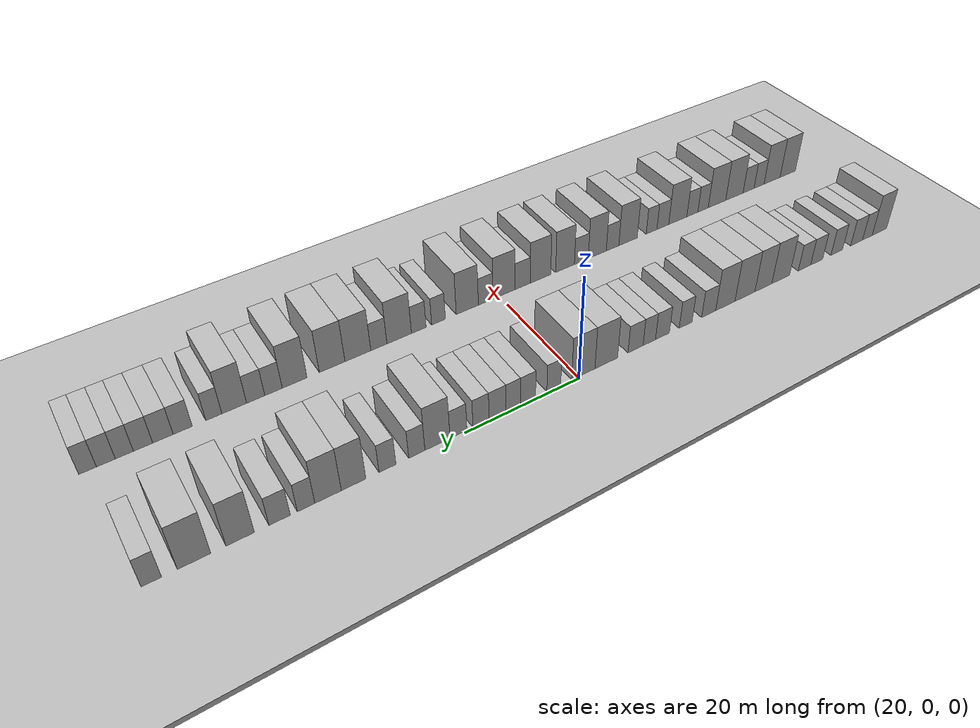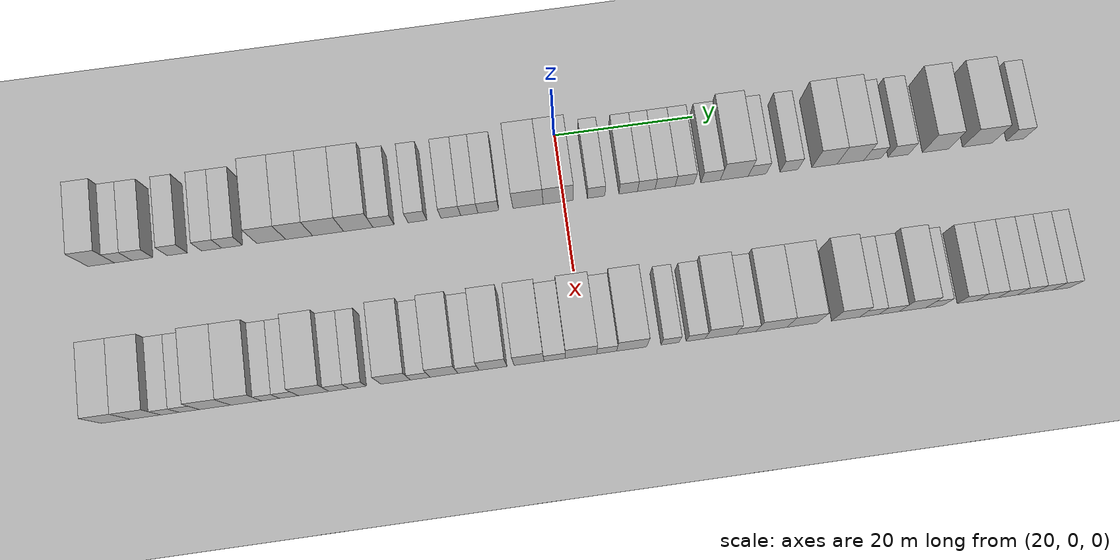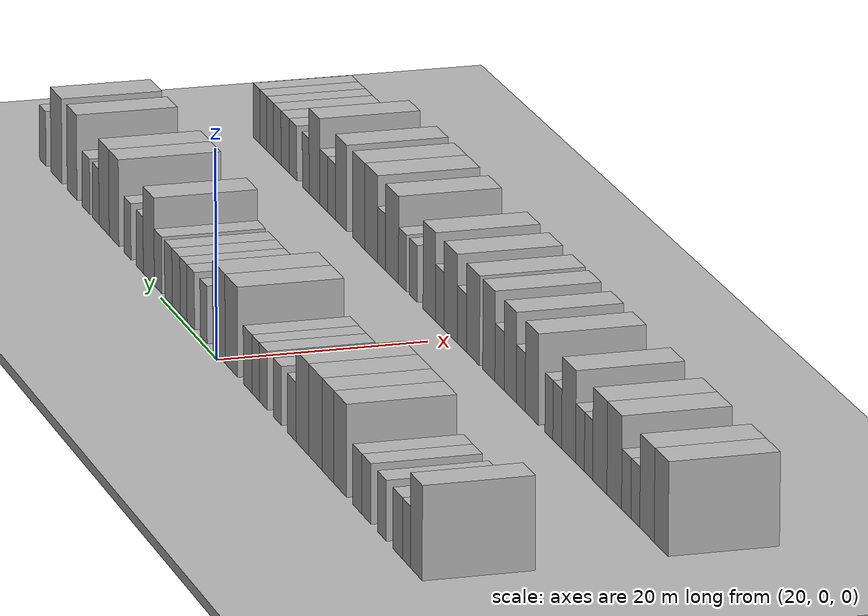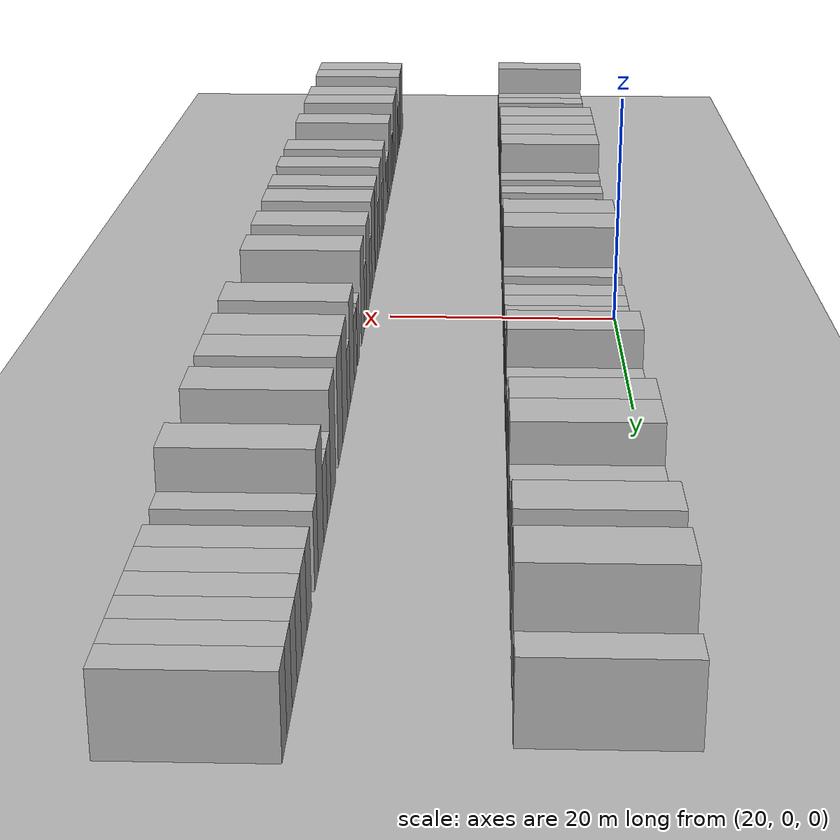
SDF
<sdf version="1.6">
 <world name="default">
  <include><name>ground_plane_1</name><uri>model://HANNAS_ground_plane</uri></include>
  <include>
   <name>ground_plane_2</name>
   <uri>model://HANNAS_ground_plane</uri>
   <pose>100 0 0  0 0 0</pose>
  </include>
  <model name="building_38">
   <static>1</static>
   <pose>25.0000 -65.1776 0 0.000000 0.000000 0.000000</pose>
   <link name="link">
    <pose>0 0 4.50 0 0 0</pose>
    <collision name="collision"><geometry><box><size>10.0000 3.6598 9.0000</size></box></geometry></collision>
    <visual name="visual">
     <cast_shadows>0</cast_shadows>
     <geometry><box><size>10.0000 3.6598 9.0000</size></box></geometry>
     <material>
      <script>
       <uri>model://HANNAS_wall/materials/scripts</uri>
       <uri>model://HANNAS_wall/materials/textures</uri>
       <name>vrc/HANNAS_wall</name>
      </script>
     </material>
    </visual>
   </link>
  </model>
  <model name="building_39">
   <static>1</static>
   <pose>25.0000 -62.1291 0 0.000000 0.000000 0.000000</pose>
   <link name="link">
    <pose>0 0 3.00 0 0 0</pose>
    <collision name="collision"><geometry><box><size>10.0000 2.4372 6.0000</size></box></geometry></collision>
    <visual name="visual">
     <cast_shadows>0</cast_shadows>
     <geometry><box><size>10.0000 2.4372 6.0000</size></box></geometry>
     <material>
      <script>
       <uri>model://HANNAS_wall/materials/scripts</uri>
       <uri>model://HANNAS_wall/materials/textures</uri>
       <name>vrc/HANNAS_wall</name>
      </script>
     </material>
    </visual>
   </link>
  </model>
  <model name="building_40">
   <static>1</static>
   <pose>25.0000 -59.4379 0 0.000000 0.000000 0.000000</pose>
   <link name="link">
    <pose>0 0 3.00 0 0 0</pose>
    <collision name="collision"><geometry><box><size>10.0000 2.9452 6.0000</size></box></geometry></collision>
    <visual name="visual">
     <cast_shadows>0</cast_shadows>
     <geometry><box><size>10.0000 2.9452 6.0000</size></box></geometry>
     <material>
      <script>
       <uri>model://HANNAS_wall/materials/scripts</uri>
       <uri>model://HANNAS_wall/materials/textures</uri>
       <name>vrc/HANNAS_wall</name>
      </script>
     </material>
    </visual>
   </link>
  </model>
  <model name="building_41">
   <static>1</static>
   <pose>25.0000 -54.5569 0 0.000000 0.000000 0.000000</pose>
   <link name="link">
    <pose>0 0 3.00 0 0 0</pose>
    <collision name="collision"><geometry><box><size>10.0000 2.8167 6.0000</size></box></geometry></collision>
    <visual name="visual">
     <cast_shadows>0</cast_shadows>
     <geometry><box><size>10.0000 2.8167 6.0000</size></box></geometry>
     <material>
      <script>
       <uri>model://HANNAS_wall/materials/scripts</uri>
       <uri>model://HANNAS_wall/materials/textures</uri>
       <name>vrc/HANNAS_wall</name>
      </script>
     </material>
    </visual>
   </link>
  </model>
  <model name="building_42">
   <static>1</static>
   <pose>25.0000 -49.7242 0 0.000000 0.000000 0.000000</pose>
   <link name="link">
    <pose>0 0 3.00 0 0 0</pose>
    <collision name="collision"><geometry><box><size>10.0000 2.8488 6.0000</size></box></geometry></collision>
    <visual name="visual">
     <cast_shadows>0</cast_shadows>
     <geometry><box><size>10.0000 2.8488 6.0000</size></box></geometry>
     <material>
      <script>
       <uri>model://HANNAS_wall/materials/scripts</uri>
       <uri>model://HANNAS_wall/materials/textures</uri>
       <name>vrc/HANNAS_wall</name>
      </script>
     </material>
    </visual>
   </link>
  </model>
  <model name="building_43">
   <static>1</static>
   <pose>25.0000 -46.8481 0 0.000000 0.000000 0.000000</pose>
   <link name="link">
    <pose>0 0 3.00 0 0 0</pose>
    <collision name="collision"><geometry><box><size>10.0000 2.9032 6.0000</size></box></geometry></collision>
    <visual name="visual">
     <cast_shadows>0</cast_shadows>
     <geometry><box><size>10.0000 2.9032 6.0000</size></box></geometry>
     <material>
      <script>
       <uri>model://HANNAS_wall/materials/scripts</uri>
       <uri>model://HANNAS_wall/materials/textures</uri>
       <name>vrc/HANNAS_wall</name>
      </script>
     </material>
    </visual>
   </link>
  </model>
  <model name="building_44">
   <static>1</static>
   <pose>25.0000 -41.3702 0 0.000000 0.000000 0.000000</pose>
   <link name="link">
    <pose>0 0 4.50 0 0 0</pose>
    <collision name="collision"><geometry><box><size>10.0000 4.0526 9.0000</size></box></geometry></collision>
    <visual name="visual">
     <cast_shadows>0</cast_shadows>
     <geometry><box><size>10.0000 4.0526 9.0000</size></box></geometry>
     <material>
      <script>
       <uri>model://HANNAS_wall/materials/scripts</uri>
       <uri>model://HANNAS_wall/materials/textures</uri>
       <name>vrc/HANNAS_wall</name>
      </script>
     </material>
    </visual>
   </link>
  </model>
  <model name="building_45">
   <static>1</static>
   <pose>25.0000 -37.4439 0 0.000000 0.000000 0.000000</pose>
   <link name="link">
    <pose>0 0 4.50 0 0 0</pose>
    <collision name="collision"><geometry><box><size>10.0000 3.8000 9.0000</size></box></geometry></collision>
    <visual name="visual">
     <cast_shadows>0</cast_shadows>
     <geometry><box><size>10.0000 3.8000 9.0000</size></box></geometry>
     <material>
      <script>
       <uri>model://HANNAS_wall/materials/scripts</uri>
       <uri>model://HANNAS_wall/materials/textures</uri>
       <name>vrc/HANNAS_wall</name>
      </script>
     </material>
    </visual>
   </link>
  </model>
  <model name="building_46">
   <static>1</static>
   <pose>25.0000 -33.3550 0 0.000000 0.000000 0.000000</pose>
   <link name="link">
    <pose>0 0 4.50 0 0 0</pose>
    <collision name="collision"><geometry><box><size>10.0000 4.3778 9.0000</size></box></geometry></collision>
    <visual name="visual">
     <cast_shadows>0</cast_shadows>
     <geometry><box><size>10.0000 4.3778 9.0000</size></box></geometry>
     <material>
      <script>
       <uri>model://HANNAS_wall/materials/scripts</uri>
       <uri>model://HANNAS_wall/materials/textures</uri>
       <name>vrc/HANNAS_wall</name>
      </script>
     </material>
    </visual>
   </link>
  </model>
  <model name="building_47">
   <static>1</static>
   <pose>25.0000 -29.0945 0 0.000000 0.000000 0.000000</pose>
   <link name="link">
    <pose>0 0 4.50 0 0 0</pose>
    <collision name="collision"><geometry><box><size>10.0000 4.1430 9.0000</size></box></geometry></collision>
    <visual name="visual">
     <cast_shadows>0</cast_shadows>
     <geometry><box><size>10.0000 4.1430 9.0000</size></box></geometry>
     <material>
      <script>
       <uri>model://HANNAS_wall/materials/scripts</uri>
       <uri>model://HANNAS_wall/materials/textures</uri>
       <name>vrc/HANNAS_wall</name>
      </script>
     </material>
    </visual>
   </link>
  </model>
  <model name="building_48">
   <static>1</static>
   <pose>25.0000 -25.5393 0 0.000000 0.000000 0.000000</pose>
   <link name="link">
    <pose>0 0 3.00 0 0 0</pose>
    <collision name="collision"><geometry><box><size>10.0000 2.9674 6.0000</size></box></geometry></collision>
    <visual name="visual">
     <cast_shadows>0</cast_shadows>
     <geometry><box><size>10.0000 2.9674 6.0000</size></box></geometry>
     <material>
      <script>
       <uri>model://HANNAS_wall/materials/scripts</uri>
       <uri>model://HANNAS_wall/materials/textures</uri>
       <name>vrc/HANNAS_wall</name>
      </script>
     </material>
    </visual>
   </link>
  </model>
  <model name="building_49">
   <static>1</static>
   <pose>25.0000 -20.7323 0 0.000000 0.000000 0.000000</pose>
   <link name="link">
    <pose>0 0 3.00 0 0 0</pose>
    <collision name="collision"><geometry><box><size>10.0000 2.6467 6.0000</size></box></geometry></collision>
    <visual name="visual">
     <cast_shadows>0</cast_shadows>
     <geometry><box><size>10.0000 2.6467 6.0000</size></box></geometry>
     <material>
      <script>
       <uri>model://HANNAS_wall/materials/scripts</uri>
       <uri>model://HANNAS_wall/materials/textures</uri>
       <name>vrc/HANNAS_wall</name>
      </script>
     </material>
    </visual>
   </link>
  </model>
  <model name="building_50">
   <static>1</static>
   <pose>25.0000 -16.0155 0 0.000000 0.000000 0.000000</pose>
   <link name="link">
    <pose>0 0 3.00 0 0 0</pose>
    <collision name="collision"><geometry><box><size>10.0000 2.7867 6.0000</size></box></geometry></collision>
    <visual name="visual">
     <cast_shadows>0</cast_shadows>
     <geometry><box><size>10.0000 2.7867 6.0000</size></box></geometry>
     <material>
      <script>
       <uri>model://HANNAS_wall/materials/scripts</uri>
       <uri>model://HANNAS_wall/materials/textures</uri>
       <name>vrc/HANNAS_wall</name>
      </script>
     </material>
    </visual>
   </link>
  </model>
  <model name="building_51">
   <static>1</static>
   <pose>25.0000 -13.3936 0 0.000000 0.000000 0.000000</pose>
   <link name="link">
    <pose>0 0 3.00 0 0 0</pose>
    <collision name="collision"><geometry><box><size>10.0000 2.4571 6.0000</size></box></geometry></collision>
    <visual name="visual">
     <cast_shadows>0</cast_shadows>
     <geometry><box><size>10.0000 2.4571 6.0000</size></box></geometry>
     <material>
      <script>
       <uri>model://HANNAS_wall/materials/scripts</uri>
       <uri>model://HANNAS_wall/materials/textures</uri>
       <name>vrc/HANNAS_wall</name>
      </script>
     </material>
    </visual>
   </link>
  </model>
  <model name="building_52">
   <static>1</static>
   <pose>25.0000 -10.6861 0 0.000000 0.000000 0.000000</pose>
   <link name="link">
    <pose>0 0 3.00 0 0 0</pose>
    <collision name="collision"><geometry><box><size>10.0000 2.9580 6.0000</size></box></geometry></collision>
    <visual name="visual">
     <cast_shadows>0</cast_shadows>
     <geometry><box><size>10.0000 2.9580 6.0000</size></box></geometry>
     <material>
      <script>
       <uri>model://HANNAS_wall/materials/scripts</uri>
       <uri>model://HANNAS_wall/materials/textures</uri>
       <name>vrc/HANNAS_wall</name>
      </script>
     </material>
    </visual>
   </link>
  </model>
  <model name="building_53">
   <static>1</static>
   <pose>25.0000 -5.0630 0 0.000000 0.000000 0.000000</pose>
   <link name="link">
    <pose>0 0 4.50 0 0 0</pose>
    <collision name="collision"><geometry><box><size>10.0000 4.2881 9.0000</size></box></geometry></collision>
    <visual name="visual">
     <cast_shadows>0</cast_shadows>
     <geometry><box><size>10.0000 4.2881 9.0000</size></box></geometry>
     <material>
      <script>
       <uri>model://HANNAS_wall/materials/scripts</uri>
       <uri>model://HANNAS_wall/materials/textures</uri>
       <name>vrc/HANNAS_wall</name>
      </script>
     </material>
    </visual>
   </link>
  </model>
  <model name="building_54">
   <static>1</static>
   <pose>25.0000 -0.7715 0 0.000000 0.000000 0.000000</pose>
   <link name="link">
    <pose>0 0 4.50 0 0 0</pose>
    <collision name="collision"><geometry><box><size>10.0000 4.2949 9.0000</size></box></geometry></collision>
    <visual name="visual">
     <cast_shadows>0</cast_shadows>
     <geometry><box><size>10.0000 4.2949 9.0000</size></box></geometry>
     <material>
      <script>
       <uri>model://HANNAS_wall/materials/scripts</uri>
       <uri>model://HANNAS_wall/materials/textures</uri>
       <name>vrc/HANNAS_wall</name>
      </script>
     </material>
    </visual>
   </link>
  </model>
  <model name="building_55">
   <static>1</static>
   <pose>25.0000 4.6251 0 0.000000 0.000000 0.000000</pose>
   <link name="link">
    <pose>0 0 3.00 0 0 0</pose>
    <collision name="collision"><geometry><box><size>10.0000 2.4984 6.0000</size></box></geometry></collision>
    <visual name="visual">
     <cast_shadows>0</cast_shadows>
     <geometry><box><size>10.0000 2.4984 6.0000</size></box></geometry>
     <material>
      <script>
       <uri>model://HANNAS_wall/materials/scripts</uri>
       <uri>model://HANNAS_wall/materials/textures</uri>
       <name>vrc/HANNAS_wall</name>
      </script>
     </material>
    </visual>
   </link>
  </model>
  <model name="building_56">
   <static>1</static>
   <pose>25.0000 9.1985 0 0.000000 0.000000 0.000000</pose>
   <link name="link">
    <pose>0 0 3.00 0 0 0</pose>
    <collision name="collision"><geometry><box><size>10.0000 2.6484 6.0000</size></box></geometry></collision>
    <visual name="visual">
     <cast_shadows>0</cast_shadows>
     <geometry><box><size>10.0000 2.6484 6.0000</size></box></geometry>
     <material>
      <script>
       <uri>model://HANNAS_wall/materials/scripts</uri>
       <uri>model://HANNAS_wall/materials/textures</uri>
       <name>vrc/HANNAS_wall</name>
      </script>
     </material>
    </visual>
   </link>
  </model>
  <model name="building_57">
   <static>1</static>
   <pose>25.0000 11.7842 0 0.000000 0.000000 0.000000</pose>
   <link name="link">
    <pose>0 0 3.00 0 0 0</pose>
    <collision name="collision"><geometry><box><size>10.0000 2.5229 6.0000</size></box></geometry></collision>
    <visual name="visual">
     <cast_shadows>0</cast_shadows>
     <geometry><box><size>10.0000 2.5229 6.0000</size></box></geometry>
     <material>
      <script>
       <uri>model://HANNAS_wall/materials/scripts</uri>
       <uri>model://HANNAS_wall/materials/textures</uri>
       <name>vrc/HANNAS_wall</name>
      </script>
     </material>
    </visual>
   </link>
  </model>
  <model name="building_58">
   <static>1</static>
   <pose>25.0000 14.4727 0 0.000000 0.000000 0.000000</pose>
   <link name="link">
    <pose>0 0 3.00 0 0 0</pose>
    <collision name="collision"><geometry><box><size>10.0000 2.8541 6.0000</size></box></geometry></collision>
    <visual name="visual">
     <cast_shadows>0</cast_shadows>
     <geometry><box><size>10.0000 2.8541 6.0000</size></box></geometry>
     <material>
      <script>
       <uri>model://HANNAS_wall/materials/scripts</uri>
       <uri>model://HANNAS_wall/materials/textures</uri>
       <name>vrc/HANNAS_wall</name>
      </script>
     </material>
    </visual>
   </link>
  </model>
  <model name="building_59">
   <static>1</static>
   <pose>25.0000 17.2530 0 0.000000 0.000000 0.000000</pose>
   <link name="link">
    <pose>0 0 3.00 0 0 0</pose>
    <collision name="collision"><geometry><box><size>10.0000 2.7065 6.0000</size></box></geometry></collision>
    <visual name="visual">
     <cast_shadows>0</cast_shadows>
     <geometry><box><size>10.0000 2.7065 6.0000</size></box></geometry>
     <material>
      <script>
       <uri>model://HANNAS_wall/materials/scripts</uri>
       <uri>model://HANNAS_wall/materials/textures</uri>
       <name>vrc/HANNAS_wall</name>
      </script>
     </material>
    </visual>
   </link>
  </model>
  <model name="building_60">
   <static>1</static>
   <pose>25.0000 20.9910 0 0.000000 0.000000 0.000000</pose>
   <link name="link">
    <pose>0 0 3.00 0 0 0</pose>
    <collision name="collision"><geometry><box><size>10.0000 2.7695 6.0000</size></box></geometry></collision>
    <visual name="visual">
     <cast_shadows>0</cast_shadows>
     <geometry><box><size>10.0000 2.7695 6.0000</size></box></geometry>
     <material>
      <script>
       <uri>model://HANNAS_wall/materials/scripts</uri>
       <uri>model://HANNAS_wall/materials/textures</uri>
       <name>vrc/HANNAS_wall</name>
      </script>
     </material>
    </visual>
   </link>
  </model>
  <model name="building_61">
   <static>1</static>
   <pose>25.0000 24.3944 0 0.000000 0.000000 0.000000</pose>
   <link name="link">
    <pose>0 0 4.50 0 0 0</pose>
    <collision name="collision"><geometry><box><size>10.0000 4.0373 9.0000</size></box></geometry></collision>
    <visual name="visual">
     <cast_shadows>0</cast_shadows>
     <geometry><box><size>10.0000 4.0373 9.0000</size></box></geometry>
     <material>
      <script>
       <uri>model://HANNAS_wall/materials/scripts</uri>
       <uri>model://HANNAS_wall/materials/textures</uri>
       <name>vrc/HANNAS_wall</name>
      </script>
     </material>
    </visual>
   </link>
  </model>
  <model name="building_62">
   <static>1</static>
   <pose>25.0000 27.6877 0 0.000000 0.000000 0.000000</pose>
   <link name="link">
    <pose>0 0 3.00 0 0 0</pose>
    <collision name="collision"><geometry><box><size>10.0000 2.5493 6.0000</size></box></geometry></collision>
    <visual name="visual">
     <cast_shadows>0</cast_shadows>
     <geometry><box><size>10.0000 2.5493 6.0000</size></box></geometry>
     <material>
      <script>
       <uri>model://HANNAS_wall/materials/scripts</uri>
       <uri>model://HANNAS_wall/materials/textures</uri>
       <name>vrc/HANNAS_wall</name>
      </script>
     </material>
    </visual>
   </link>
  </model>
  <model name="building_63">
   <static>1</static>
   <pose>25.0000 32.2560 0 0.000000 0.000000 0.000000</pose>
   <link name="link">
    <pose>0 0 3.00 0 0 0</pose>
    <collision name="collision"><geometry><box><size>10.0000 2.5872 6.0000</size></box></geometry></collision>
    <visual name="visual">
     <cast_shadows>0</cast_shadows>
     <geometry><box><size>10.0000 2.5872 6.0000</size></box></geometry>
     <material>
      <script>
       <uri>model://HANNAS_wall/materials/scripts</uri>
       <uri>model://HANNAS_wall/materials/textures</uri>
       <name>vrc/HANNAS_wall</name>
      </script>
     </material>
    </visual>
   </link>
  </model>
  <model name="building_64">
   <static>1</static>
   <pose>25.0000 37.3747 0 0.000000 0.000000 0.000000</pose>
   <link name="link">
    <pose>0 0 4.50 0 0 0</pose>
    <collision name="collision"><geometry><box><size>10.0000 3.6503 9.0000</size></box></geometry></collision>
    <visual name="visual">
     <cast_shadows>0</cast_shadows>
     <geometry><box><size>10.0000 3.6503 9.0000</size></box></geometry>
     <material>
      <script>
       <uri>model://HANNAS_wall/materials/scripts</uri>
       <uri>model://HANNAS_wall/materials/textures</uri>
       <name>vrc/HANNAS_wall</name>
      </script>
     </material>
    </visual>
   </link>
  </model>
  <model name="building_65">
   <static>1</static>
   <pose>25.0000 41.1248 0 0.000000 0.000000 0.000000</pose>
   <link name="link">
    <pose>0 0 4.50 0 0 0</pose>
    <collision name="collision"><geometry><box><size>10.0000 3.8499 9.0000</size></box></geometry></collision>
    <visual name="visual">
     <cast_shadows>0</cast_shadows>
     <geometry><box><size>10.0000 3.8499 9.0000</size></box></geometry>
     <material>
      <script>
       <uri>model://HANNAS_wall/materials/scripts</uri>
       <uri>model://HANNAS_wall/materials/textures</uri>
       <name>vrc/HANNAS_wall</name>
      </script>
     </material>
    </visual>
   </link>
  </model>
  <model name="building_66">
   <static>1</static>
   <pose>25.0000 44.2967 0 0.000000 0.000000 0.000000</pose>
   <link name="link">
    <pose>0 0 3.00 0 0 0</pose>
    <collision name="collision"><geometry><box><size>10.0000 2.4941 6.0000</size></box></geometry></collision>
    <visual name="visual">
     <cast_shadows>0</cast_shadows>
     <geometry><box><size>10.0000 2.4941 6.0000</size></box></geometry>
     <material>
      <script>
       <uri>model://HANNAS_wall/materials/scripts</uri>
       <uri>model://HANNAS_wall/materials/textures</uri>
       <name>vrc/HANNAS_wall</name>
      </script>
     </material>
    </visual>
   </link>
  </model>
  <model name="building_67">
   <static>1</static>
   <pose>25.0000 48.0324 0 0.000000 0.000000 0.000000</pose>
   <link name="link">
    <pose>0 0 3.00 0 0 0</pose>
    <collision name="collision"><geometry><box><size>10.0000 2.9772 6.0000</size></box></geometry></collision>
    <visual name="visual">
     <cast_shadows>0</cast_shadows>
     <geometry><box><size>10.0000 2.9772 6.0000</size></box></geometry>
     <material>
      <script>
       <uri>model://HANNAS_wall/materials/scripts</uri>
       <uri>model://HANNAS_wall/materials/textures</uri>
       <name>vrc/HANNAS_wall</name>
      </script>
     </material>
    </visual>
   </link>
  </model>
  <model name="building_68">
   <static>1</static>
   <pose>25.0000 53.4341 0 0.000000 0.000000 0.000000</pose>
   <link name="link">
    <pose>0 0 4.50 0 0 0</pose>
    <collision name="collision"><geometry><box><size>10.0000 3.8263 9.0000</size></box></geometry></collision>
    <visual name="visual">
     <cast_shadows>0</cast_shadows>
     <geometry><box><size>10.0000 3.8263 9.0000</size></box></geometry>
     <material>
      <script>
       <uri>model://HANNAS_wall/materials/scripts</uri>
       <uri>model://HANNAS_wall/materials/textures</uri>
       <name>vrc/HANNAS_wall</name>
      </script>
     </material>
    </visual>
   </link>
  </model>
  <model name="building_69">
   <static>1</static>
   <pose>25.0000 59.5182 0 0.000000 0.000000 0.000000</pose>
   <link name="link">
    <pose>0 0 4.50 0 0 0</pose>
    <collision name="collision"><geometry><box><size>10.0000 4.3419 9.0000</size></box></geometry></collision>
    <visual name="visual">
     <cast_shadows>0</cast_shadows>
     <geometry><box><size>10.0000 4.3419 9.0000</size></box></geometry>
     <material>
      <script>
       <uri>model://HANNAS_wall/materials/scripts</uri>
       <uri>model://HANNAS_wall/materials/textures</uri>
       <name>vrc/HANNAS_wall</name>
      </script>
     </material>
    </visual>
   </link>
  </model>
  <model name="building_70">
   <static>1</static>
   <pose>25.0000 64.9756 0 0.000000 0.000000 0.000000</pose>
   <link name="link">
    <pose>0 0 3.00 0 0 0</pose>
    <collision name="collision"><geometry><box><size>10.0000 2.5729 6.0000</size></box></geometry></collision>
    <visual name="visual">
     <cast_shadows>0</cast_shadows>
     <geometry><box><size>10.0000 2.5729 6.0000</size></box></geometry>
     <material>
      <script>
       <uri>model://HANNAS_wall/materials/scripts</uri>
       <uri>model://HANNAS_wall/materials/textures</uri>
       <name>vrc/HANNAS_wall</name>
      </script>
     </material>
    </visual>
   </link>
  </model>
  <model name="building_144">
   <static>1</static>
   <pose>47.0000 -64.5363 0 0.000000 0.000000 0.000000</pose>
   <link name="link">
    <pose>0 0 4.50 0 0 0</pose>
    <collision name="collision"><geometry><box><size>10.0000 3.9739 9.0000</size></box></geometry></collision>
    <visual name="visual">
     <cast_shadows>0</cast_shadows>
     <geometry><box><size>10.0000 3.9739 9.0000</size></box></geometry>
     <material>
      <script>
       <uri>model://HANNAS_wall/materials/scripts</uri>
       <uri>model://HANNAS_wall/materials/textures</uri>
       <name>vrc/HANNAS_wall</name>
      </script>
     </material>
    </visual>
   </link>
  </model>
  <model name="building_145">
   <static>1</static>
   <pose>47.0000 -60.4862 0 0.000000 0.000000 0.000000</pose>
   <link name="link">
    <pose>0 0 4.50 0 0 0</pose>
    <collision name="collision"><geometry><box><size>10.0000 4.1264 9.0000</size></box></geometry></collision>
    <visual name="visual">
     <cast_shadows>0</cast_shadows>
     <geometry><box><size>10.0000 4.1264 9.0000</size></box></geometry>
     <material>
      <script>
       <uri>model://HANNAS_wall/materials/scripts</uri>
       <uri>model://HANNAS_wall/materials/textures</uri>
       <name>vrc/HANNAS_wall</name>
      </script>
     </material>
    </visual>
   </link>
  </model>
  <model name="building_146">
   <static>1</static>
   <pose>47.0000 -57.1614 0 0.000000 0.000000 0.000000</pose>
   <link name="link">
    <pose>0 0 3.00 0 0 0</pose>
    <collision name="collision"><geometry><box><size>10.0000 2.5232 6.0000</size></box></geometry></collision>
    <visual name="visual">
     <cast_shadows>0</cast_shadows>
     <geometry><box><size>10.0000 2.5232 6.0000</size></box></geometry>
     <material>
      <script>
       <uri>model://HANNAS_wall/materials/scripts</uri>
       <uri>model://HANNAS_wall/materials/textures</uri>
       <name>vrc/HANNAS_wall</name>
      </script>
     </material>
    </visual>
   </link>
  </model>
  <model name="building_147">
   <static>1</static>
   <pose>47.0000 -54.5293 0 0.000000 0.000000 0.000000</pose>
   <link name="link">
    <pose>0 0 3.00 0 0 0</pose>
    <collision name="collision"><geometry><box><size>10.0000 2.7410 6.0000</size></box></geometry></collision>
    <visual name="visual">
     <cast_shadows>0</cast_shadows>
     <geometry><box><size>10.0000 2.7410 6.0000</size></box></geometry>
     <material>
      <script>
       <uri>model://HANNAS_wall/materials/scripts</uri>
       <uri>model://HANNAS_wall/materials/textures</uri>
       <name>vrc/HANNAS_wall</name>
      </script>
     </material>
    </visual>
   </link>
  </model>
  <model name="building_148">
   <static>1</static>
   <pose>47.0000 -51.0214 0 0.000000 0.000000 0.000000</pose>
   <link name="link">
    <pose>0 0 4.50 0 0 0</pose>
    <collision name="collision"><geometry><box><size>10.0000 4.2747 9.0000</size></box></geometry></collision>
    <visual name="visual">
     <cast_shadows>0</cast_shadows>
     <geometry><box><size>10.0000 4.2747 9.0000</size></box></geometry>
     <material>
      <script>
       <uri>model://HANNAS_wall/materials/scripts</uri>
       <uri>model://HANNAS_wall/materials/textures</uri>
       <name>vrc/HANNAS_wall</name>
      </script>
     </material>
    </visual>
   </link>
  </model>
  <model name="building_149">
   <static>1</static>
   <pose>47.0000 -46.7725 0 0.000000 0.000000 0.000000</pose>
   <link name="link">
    <pose>0 0 4.50 0 0 0</pose>
    <collision name="collision"><geometry><box><size>10.0000 4.2233 9.0000</size></box></geometry></collision>
    <visual name="visual">
     <cast_shadows>0</cast_shadows>
     <geometry><box><size>10.0000 4.2233 9.0000</size></box></geometry>
     <material>
      <script>
       <uri>model://HANNAS_wall/materials/scripts</uri>
       <uri>model://HANNAS_wall/materials/textures</uri>
       <name>vrc/HANNAS_wall</name>
      </script>
     </material>
    </visual>
   </link>
  </model>
  <model name="building_150">
   <static>1</static>
   <pose>47.0000 -43.4318 0 0.000000 0.000000 0.000000</pose>
   <link name="link">
    <pose>0 0 3.00 0 0 0</pose>
    <collision name="collision"><geometry><box><size>10.0000 2.4582 6.0000</size></box></geometry></collision>
    <visual name="visual">
     <cast_shadows>0</cast_shadows>
     <geometry><box><size>10.0000 2.4582 6.0000</size></box></geometry>
     <material>
      <script>
       <uri>model://HANNAS_wall/materials/scripts</uri>
       <uri>model://HANNAS_wall/materials/textures</uri>
       <name>vrc/HANNAS_wall</name>
      </script>
     </material>
    </visual>
   </link>
  </model>
  <model name="building_151">
   <static>1</static>
   <pose>47.0000 -40.9011 0 0.000000 0.000000 0.000000</pose>
   <link name="link">
    <pose>0 0 3.00 0 0 0</pose>
    <collision name="collision"><geometry><box><size>10.0000 2.6032 6.0000</size></box></geometry></collision>
    <visual name="visual">
     <cast_shadows>0</cast_shadows>
     <geometry><box><size>10.0000 2.6032 6.0000</size></box></geometry>
     <material>
      <script>
       <uri>model://HANNAS_wall/materials/scripts</uri>
       <uri>model://HANNAS_wall/materials/textures</uri>
       <name>vrc/HANNAS_wall</name>
      </script>
     </material>
    </visual>
   </link>
  </model>
  <model name="building_152">
   <static>1</static>
   <pose>47.0000 -37.5008 0 0.000000 0.000000 0.000000</pose>
   <link name="link">
    <pose>0 0 4.50 0 0 0</pose>
    <collision name="collision"><geometry><box><size>10.0000 4.1974 9.0000</size></box></geometry></collision>
    <visual name="visual">
     <cast_shadows>0</cast_shadows>
     <geometry><box><size>10.0000 4.1974 9.0000</size></box></geometry>
     <material>
      <script>
       <uri>model://HANNAS_wall/materials/scripts</uri>
       <uri>model://HANNAS_wall/materials/textures</uri>
       <name>vrc/HANNAS_wall</name>
      </script>
     </material>
    </visual>
   </link>
  </model>
  <model name="building_153">
   <static>1</static>
   <pose>47.0000 -34.0541 0 0.000000 0.000000 0.000000</pose>
   <link name="link">
    <pose>0 0 3.00 0 0 0</pose>
    <collision name="collision"><geometry><box><size>10.0000 2.6961 6.0000</size></box></geometry></collision>
    <visual name="visual">
     <cast_shadows>0</cast_shadows>
     <geometry><box><size>10.0000 2.6961 6.0000</size></box></geometry>
     <material>
      <script>
       <uri>model://HANNAS_wall/materials/scripts</uri>
       <uri>model://HANNAS_wall/materials/textures</uri>
       <name>vrc/HANNAS_wall</name>
      </script>
     </material>
    </visual>
   </link>
  </model>
  <model name="building_154">
   <static>1</static>
   <pose>47.0000 -31.4994 0 0.000000 0.000000 0.000000</pose>
   <link name="link">
    <pose>0 0 3.00 0 0 0</pose>
    <collision name="collision"><geometry><box><size>10.0000 2.4133 6.0000</size></box></geometry></collision>
    <visual name="visual">
     <cast_shadows>0</cast_shadows>
     <geometry><box><size>10.0000 2.4133 6.0000</size></box></geometry>
     <material>
      <script>
       <uri>model://HANNAS_wall/materials/scripts</uri>
       <uri>model://HANNAS_wall/materials/textures</uri>
       <name>vrc/HANNAS_wall</name>
      </script>
     </material>
    </visual>
   </link>
  </model>
  <model name="building_155">
   <static>1</static>
   <pose>47.0000 -26.2632 0 0.000000 0.000000 0.000000</pose>
   <link name="link">
    <pose>0 0 4.50 0 0 0</pose>
    <collision name="collision"><geometry><box><size>10.0000 4.0592 9.0000</size></box></geometry></collision>
    <visual name="visual">
     <cast_shadows>0</cast_shadows>
     <geometry><box><size>10.0000 4.0592 9.0000</size></box></geometry>
     <material>
      <script>
       <uri>model://HANNAS_wall/materials/scripts</uri>
       <uri>model://HANNAS_wall/materials/textures</uri>
       <name>vrc/HANNAS_wall</name>
      </script>
     </material>
    </visual>
   </link>
  </model>
  <model name="building_156">
   <static>1</static>
   <pose>47.0000 -22.8777 0 0.000000 0.000000 0.000000</pose>
   <link name="link">
    <pose>0 0 3.00 0 0 0</pose>
    <collision name="collision"><geometry><box><size>10.0000 2.7119 6.0000</size></box></geometry></collision>
    <visual name="visual">
     <cast_shadows>0</cast_shadows>
     <geometry><box><size>10.0000 2.7119 6.0000</size></box></geometry>
     <material>
      <script>
       <uri>model://HANNAS_wall/materials/scripts</uri>
       <uri>model://HANNAS_wall/materials/textures</uri>
       <name>vrc/HANNAS_wall</name>
      </script>
     </material>
    </visual>
   </link>
  </model>
  <model name="building_157">
   <static>1</static>
   <pose>47.0000 -19.6024 0 0.000000 0.000000 0.000000</pose>
   <link name="link">
    <pose>0 0 4.50 0 0 0</pose>
    <collision name="collision"><geometry><box><size>10.0000 3.8385 9.0000</size></box></geometry></collision>
    <visual name="visual">
     <cast_shadows>0</cast_shadows>
     <geometry><box><size>10.0000 3.8385 9.0000</size></box></geometry>
     <material>
      <script>
       <uri>model://HANNAS_wall/materials/scripts</uri>
       <uri>model://HANNAS_wall/materials/textures</uri>
       <name>vrc/HANNAS_wall</name>
      </script>
     </material>
    </visual>
   </link>
  </model>
  <model name="building_158">
   <static>1</static>
   <pose>47.0000 -16.2246 0 0.000000 0.000000 0.000000</pose>
   <link name="link">
    <pose>0 0 3.00 0 0 0</pose>
    <collision name="collision"><geometry><box><size>10.0000 2.9171 6.0000</size></box></geometry></collision>
    <visual name="visual">
     <cast_shadows>0</cast_shadows>
     <geometry><box><size>10.0000 2.9171 6.0000</size></box></geometry>
     <material>
      <script>
       <uri>model://HANNAS_wall/materials/scripts</uri>
       <uri>model://HANNAS_wall/materials/textures</uri>
       <name>vrc/HANNAS_wall</name>
      </script>
     </material>
    </visual>
   </link>
  </model>
  <model name="building_159">
   <static>1</static>
   <pose>47.0000 -12.8335 0 0.000000 0.000000 0.000000</pose>
   <link name="link">
    <pose>0 0 4.50 0 0 0</pose>
    <collision name="collision"><geometry><box><size>10.0000 3.8650 9.0000</size></box></geometry></collision>
    <visual name="visual">
     <cast_shadows>0</cast_shadows>
     <geometry><box><size>10.0000 3.8650 9.0000</size></box></geometry>
     <material>
      <script>
       <uri>model://HANNAS_wall/materials/scripts</uri>
       <uri>model://HANNAS_wall/materials/textures</uri>
       <name>vrc/HANNAS_wall</name>
      </script>
     </material>
    </visual>
   </link>
  </model>
  <model name="building_160">
   <static>1</static>
   <pose>47.0000 -7.8353 0 0.000000 0.000000 0.000000</pose>
   <link name="link">
    <pose>0 0 4.50 0 0 0</pose>
    <collision name="collision"><geometry><box><size>10.0000 4.1315 9.0000</size></box></geometry></collision>
    <visual name="visual">
     <cast_shadows>0</cast_shadows>
     <geometry><box><size>10.0000 4.1315 9.0000</size></box></geometry>
     <material>
      <script>
       <uri>model://HANNAS_wall/materials/scripts</uri>
       <uri>model://HANNAS_wall/materials/textures</uri>
       <name>vrc/HANNAS_wall</name>
      </script>
     </material>
    </visual>
   </link>
  </model>
  <model name="building_161">
   <static>1</static>
   <pose>47.0000 -4.2842 0 0.000000 0.000000 0.000000</pose>
   <link name="link">
    <pose>0 0 3.00 0 0 0</pose>
    <collision name="collision"><geometry><box><size>10.0000 2.9708 6.0000</size></box></geometry></collision>
    <visual name="visual">
     <cast_shadows>0</cast_shadows>
     <geometry><box><size>10.0000 2.9708 6.0000</size></box></geometry>
     <material>
      <script>
       <uri>model://HANNAS_wall/materials/scripts</uri>
       <uri>model://HANNAS_wall/materials/textures</uri>
       <name>vrc/HANNAS_wall</name>
      </script>
     </material>
    </visual>
   </link>
  </model>
  <model name="building_162">
   <static>1</static>
   <pose>47.0000 -0.6402 0 0.000000 0.000000 0.000000</pose>
   <link name="link">
    <pose>0 0 4.50 0 0 0</pose>
    <collision name="collision"><geometry><box><size>10.0000 4.3172 9.0000</size></box></geometry></collision>
    <visual name="visual">
     <cast_shadows>0</cast_shadows>
     <geometry><box><size>10.0000 4.3172 9.0000</size></box></geometry>
     <material>
      <script>
       <uri>model://HANNAS_wall/materials/scripts</uri>
       <uri>model://HANNAS_wall/materials/textures</uri>
       <name>vrc/HANNAS_wall</name>
      </script>
     </material>
    </visual>
   </link>
  </model>
  <model name="building_163">
   <static>1</static>
   <pose>47.0000 2.9127 0 0.000000 0.000000 0.000000</pose>
   <link name="link">
    <pose>0 0 3.00 0 0 0</pose>
    <collision name="collision"><geometry><box><size>10.0000 2.7884 6.0000</size></box></geometry></collision>
    <visual name="visual">
     <cast_shadows>0</cast_shadows>
     <geometry><box><size>10.0000 2.7884 6.0000</size></box></geometry>
     <material>
      <script>
       <uri>model://HANNAS_wall/materials/scripts</uri>
       <uri>model://HANNAS_wall/materials/textures</uri>
       <name>vrc/HANNAS_wall</name>
      </script>
     </material>
    </visual>
   </link>
  </model>
  <model name="building_164">
   <static>1</static>
   <pose>47.0000 6.3901 0 0.000000 0.000000 0.000000</pose>
   <link name="link">
    <pose>0 0 4.50 0 0 0</pose>
    <collision name="collision"><geometry><box><size>10.0000 4.1665 9.0000</size></box></geometry></collision>
    <visual name="visual">
     <cast_shadows>0</cast_shadows>
     <geometry><box><size>10.0000 4.1665 9.0000</size></box></geometry>
     <material>
      <script>
       <uri>model://HANNAS_wall/materials/scripts</uri>
       <uri>model://HANNAS_wall/materials/textures</uri>
       <name>vrc/HANNAS_wall</name>
      </script>
     </material>
    </visual>
   </link>
  </model>
  <model name="building_165">
   <static>1</static>
   <pose>47.0000 11.7303 0 0.000000 0.000000 0.000000</pose>
   <link name="link">
    <pose>0 0 3.00 0 0 0</pose>
    <collision name="collision"><geometry><box><size>10.0000 2.5139 6.0000</size></box></geometry></collision>
    <visual name="visual">
     <cast_shadows>0</cast_shadows>
     <geometry><box><size>10.0000 2.5139 6.0000</size></box></geometry>
     <material>
      <script>
       <uri>model://HANNAS_wall/materials/scripts</uri>
       <uri>model://HANNAS_wall/materials/textures</uri>
       <name>vrc/HANNAS_wall</name>
      </script>
     </material>
    </visual>
   </link>
  </model>
  <model name="building_166">
   <static>1</static>
   <pose>47.0000 15.2989 0 0.000000 0.000000 0.000000</pose>
   <link name="link">
    <pose>0 0 3.00 0 0 0</pose>
    <collision name="collision"><geometry><box><size>10.0000 2.6233 6.0000</size></box></geometry></collision>
    <visual name="visual">
     <cast_shadows>0</cast_shadows>
     <geometry><box><size>10.0000 2.6233 6.0000</size></box></geometry>
     <material>
      <script>
       <uri>model://HANNAS_wall/materials/scripts</uri>
       <uri>model://HANNAS_wall/materials/textures</uri>
       <name>vrc/HANNAS_wall</name>
      </script>
     </material>
    </visual>
   </link>
  </model>
  <model name="building_167">
   <static>1</static>
   <pose>47.0000 18.7716 0 0.000000 0.000000 0.000000</pose>
   <link name="link">
    <pose>0 0 4.50 0 0 0</pose>
    <collision name="collision"><geometry><box><size>10.0000 4.3222 9.0000</size></box></geometry></collision>
    <visual name="visual">
     <cast_shadows>0</cast_shadows>
     <geometry><box><size>10.0000 4.3222 9.0000</size></box></geometry>
     <material>
      <script>
       <uri>model://HANNAS_wall/materials/scripts</uri>
       <uri>model://HANNAS_wall/materials/textures</uri>
       <name>vrc/HANNAS_wall</name>
      </script>
     </material>
    </visual>
   </link>
  </model>
  <model name="building_168">
   <static>1</static>
   <pose>47.0000 22.3234 0 0.000000 0.000000 0.000000</pose>
   <link name="link">
    <pose>0 0 3.00 0 0 0</pose>
    <collision name="collision"><geometry><box><size>10.0000 2.7814 6.0000</size></box></geometry></collision>
    <visual name="visual">
     <cast_shadows>0</cast_shadows>
     <geometry><box><size>10.0000 2.7814 6.0000</size></box></geometry>
     <material>
      <script>
       <uri>model://HANNAS_wall/materials/scripts</uri>
       <uri>model://HANNAS_wall/materials/textures</uri>
       <name>vrc/HANNAS_wall</name>
      </script>
     </material>
    </visual>
   </link>
  </model>
  <model name="building_169">
   <static>1</static>
   <pose>47.0000 25.9094 0 0.000000 0.000000 0.000000</pose>
   <link name="link">
    <pose>0 0 4.50 0 0 0</pose>
    <collision name="collision"><geometry><box><size>10.0000 4.3906 9.0000</size></box></geometry></collision>
    <visual name="visual">
     <cast_shadows>0</cast_shadows>
     <geometry><box><size>10.0000 4.3906 9.0000</size></box></geometry>
     <material>
      <script>
       <uri>model://HANNAS_wall/materials/scripts</uri>
       <uri>model://HANNAS_wall/materials/textures</uri>
       <name>vrc/HANNAS_wall</name>
      </script>
     </material>
    </visual>
   </link>
  </model>
  <model name="building_170">
   <static>1</static>
   <pose>47.0000 30.2264 0 0.000000 0.000000 0.000000</pose>
   <link name="link">
    <pose>0 0 4.50 0 0 0</pose>
    <collision name="collision"><geometry><box><size>10.0000 4.2434 9.0000</size></box></geometry></collision>
    <visual name="visual">
     <cast_shadows>0</cast_shadows>
     <geometry><box><size>10.0000 4.2434 9.0000</size></box></geometry>
     <material>
      <script>
       <uri>model://HANNAS_wall/materials/scripts</uri>
       <uri>model://HANNAS_wall/materials/textures</uri>
       <name>vrc/HANNAS_wall</name>
      </script>
     </material>
    </visual>
   </link>
  </model>
  <model name="building_171">
   <static>1</static>
   <pose>47.0000 36.3356 0 0.000000 0.000000 0.000000</pose>
   <link name="link">
    <pose>0 0 4.50 0 0 0</pose>
    <collision name="collision"><geometry><box><size>10.0000 3.9749 9.0000</size></box></geometry></collision>
    <visual name="visual">
     <cast_shadows>0</cast_shadows>
     <geometry><box><size>10.0000 3.9749 9.0000</size></box></geometry>
     <material>
      <script>
       <uri>model://HANNAS_wall/materials/scripts</uri>
       <uri>model://HANNAS_wall/materials/textures</uri>
       <name>vrc/HANNAS_wall</name>
      </script>
     </material>
    </visual>
   </link>
  </model>
  <model name="building_172">
   <static>1</static>
   <pose>47.0000 39.6995 0 0.000000 0.000000 0.000000</pose>
   <link name="link">
    <pose>0 0 3.00 0 0 0</pose>
    <collision name="collision"><geometry><box><size>10.0000 2.7530 6.0000</size></box></geometry></collision>
    <visual name="visual">
     <cast_shadows>0</cast_shadows>
     <geometry><box><size>10.0000 2.7530 6.0000</size></box></geometry>
     <material>
      <script>
       <uri>model://HANNAS_wall/materials/scripts</uri>
       <uri>model://HANNAS_wall/materials/textures</uri>
       <name>vrc/HANNAS_wall</name>
      </script>
     </material>
    </visual>
   </link>
  </model>
  <model name="building_173">
   <static>1</static>
   <pose>47.0000 42.4815 0 0.000000 0.000000 0.000000</pose>
   <link name="link">
    <pose>0 0 3.00 0 0 0</pose>
    <collision name="collision"><geometry><box><size>10.0000 2.8109 6.0000</size></box></geometry></collision>
    <visual name="visual">
     <cast_shadows>0</cast_shadows>
     <geometry><box><size>10.0000 2.8109 6.0000</size></box></geometry>
     <material>
      <script>
       <uri>model://HANNAS_wall/materials/scripts</uri>
       <uri>model://HANNAS_wall/materials/textures</uri>
       <name>vrc/HANNAS_wall</name>
      </script>
     </material>
    </visual>
   </link>
  </model>
  <model name="building_174">
   <static>1</static>
   <pose>47.0000 45.7698 0 0.000000 0.000000 0.000000</pose>
   <link name="link">
    <pose>0 0 4.50 0 0 0</pose>
    <collision name="collision"><geometry><box><size>10.0000 3.7657 9.0000</size></box></geometry></collision>
    <visual name="visual">
     <cast_shadows>0</cast_shadows>
     <geometry><box><size>10.0000 3.7657 9.0000</size></box></geometry>
     <material>
      <script>
       <uri>model://HANNAS_wall/materials/scripts</uri>
       <uri>model://HANNAS_wall/materials/textures</uri>
       <name>vrc/HANNAS_wall</name>
      </script>
     </material>
    </visual>
   </link>
  </model>
  <model name="building_175">
   <static>1</static>
   <pose>47.0000 48.8544 0 0.000000 0.000000 0.000000</pose>
   <link name="link">
    <pose>0 0 3.00 0 0 0</pose>
    <collision name="collision"><geometry><box><size>10.0000 2.4036 6.0000</size></box></geometry></collision>
    <visual name="visual">
     <cast_shadows>0</cast_shadows>
     <geometry><box><size>10.0000 2.4036 6.0000</size></box></geometry>
     <material>
      <script>
       <uri>model://HANNAS_wall/materials/scripts</uri>
       <uri>model://HANNAS_wall/materials/textures</uri>
       <name>vrc/HANNAS_wall</name>
      </script>
     </material>
    </visual>
   </link>
  </model>
  <model name="building_176">
   <static>1</static>
   <pose>47.0000 53.4485 0 0.000000 0.000000 0.000000</pose>
   <link name="link">
    <pose>0 0 3.00 0 0 0</pose>
    <collision name="collision"><geometry><box><size>10.0000 2.7846 6.0000</size></box></geometry></collision>
    <visual name="visual">
     <cast_shadows>0</cast_shadows>
     <geometry><box><size>10.0000 2.7846 6.0000</size></box></geometry>
     <material>
      <script>
       <uri>model://HANNAS_wall/materials/scripts</uri>
       <uri>model://HANNAS_wall/materials/textures</uri>
       <name>vrc/HANNAS_wall</name>
      </script>
     </material>
    </visual>
   </link>
  </model>
  <model name="building_177">
   <static>1</static>
   <pose>47.0000 56.3050 0 0.000000 0.000000 0.000000</pose>
   <link name="link">
    <pose>0 0 3.00 0 0 0</pose>
    <collision name="collision"><geometry><box><size>10.0000 2.9283 6.0000</size></box></geometry></collision>
    <visual name="visual">
     <cast_shadows>0</cast_shadows>
     <geometry><box><size>10.0000 2.9283 6.0000</size></box></geometry>
     <material>
      <script>
       <uri>model://HANNAS_wall/materials/scripts</uri>
       <uri>model://HANNAS_wall/materials/textures</uri>
       <name>vrc/HANNAS_wall</name>
      </script>
     </material>
    </visual>
   </link>
  </model>
  <model name="building_178">
   <static>1</static>
   <pose>47.0000 59.1329 0 0.000000 0.000000 0.000000</pose>
   <link name="link">
    <pose>0 0 3.00 0 0 0</pose>
    <collision name="collision"><geometry><box><size>10.0000 2.7276 6.0000</size></box></geometry></collision>
    <visual name="visual">
     <cast_shadows>0</cast_shadows>
     <geometry><box><size>10.0000 2.7276 6.0000</size></box></geometry>
     <material>
      <script>
       <uri>model://HANNAS_wall/materials/scripts</uri>
       <uri>model://HANNAS_wall/materials/textures</uri>
       <name>vrc/HANNAS_wall</name>
      </script>
     </material>
    </visual>
   </link>
  </model>
  <model name="building_179">
   <static>1</static>
   <pose>47.0000 61.7476 0 0.000000 0.000000 0.000000</pose>
   <link name="link">
    <pose>0 0 3.00 0 0 0</pose>
    <collision name="collision"><geometry><box><size>10.0000 2.5018 6.0000</size></box></geometry></collision>
    <visual name="visual">
     <cast_shadows>0</cast_shadows>
     <geometry><box><size>10.0000 2.5018 6.0000</size></box></geometry>
     <material>
      <script>
       <uri>model://HANNAS_wall/materials/scripts</uri>
       <uri>model://HANNAS_wall/materials/textures</uri>
       <name>vrc/HANNAS_wall</name>
      </script>
     </material>
    </visual>
   </link>
  </model>
  <model name="building_180">
   <static>1</static>
   <pose>47.0000 64.2879 0 0.000000 0.000000 0.000000</pose>
   <link name="link">
    <pose>0 0 3.00 0 0 0</pose>
    <collision name="collision"><geometry><box><size>10.0000 2.5788 6.0000</size></box></geometry></collision>
    <visual name="visual">
     <cast_shadows>0</cast_shadows>
     <geometry><box><size>10.0000 2.5788 6.0000</size></box></geometry>
     <material>
      <script>
       <uri>model://HANNAS_wall/materials/scripts</uri>
       <uri>model://HANNAS_wall/materials/textures</uri>
       <name>vrc/HANNAS_wall</name>
      </script>
     </material>
    </visual>
   </link>
  </model>
  <model name="building_181">
   <static>1</static>
   <pose>47.0000 66.7792 0 0.000000 0.000000 0.000000</pose>
   <link name="link">
    <pose>0 0 3.00 0 0 0</pose>
    <collision name="collision"><geometry><box><size>10.0000 2.4038 6.0000</size></box></geometry></collision>
    <visual name="visual">
     <cast_shadows>0</cast_shadows>
     <geometry><box><size>10.0000 2.4038 6.0000</size></box></geometry>
     <material>
      <script>
       <uri>model://HANNAS_wall/materials/scripts</uri>
       <uri>model://HANNAS_wall/materials/textures</uri>
       <name>vrc/HANNAS_wall</name>
      </script>
     </material>
    </visual>
   </link>
  </model>
 </world>
</sdf>
